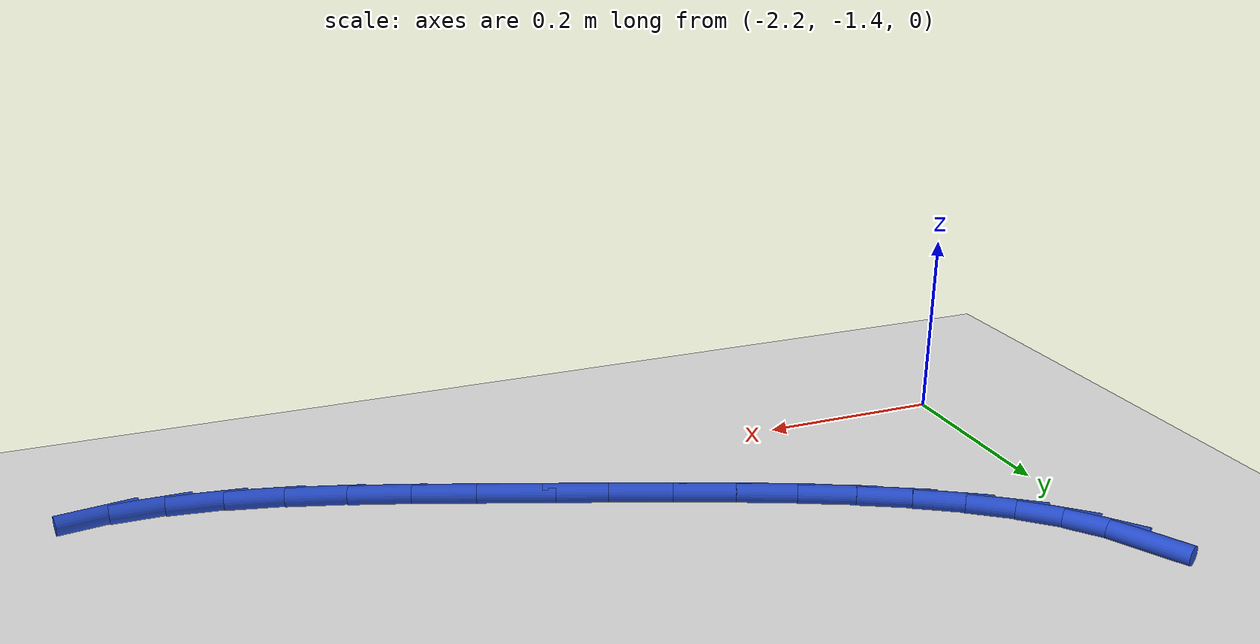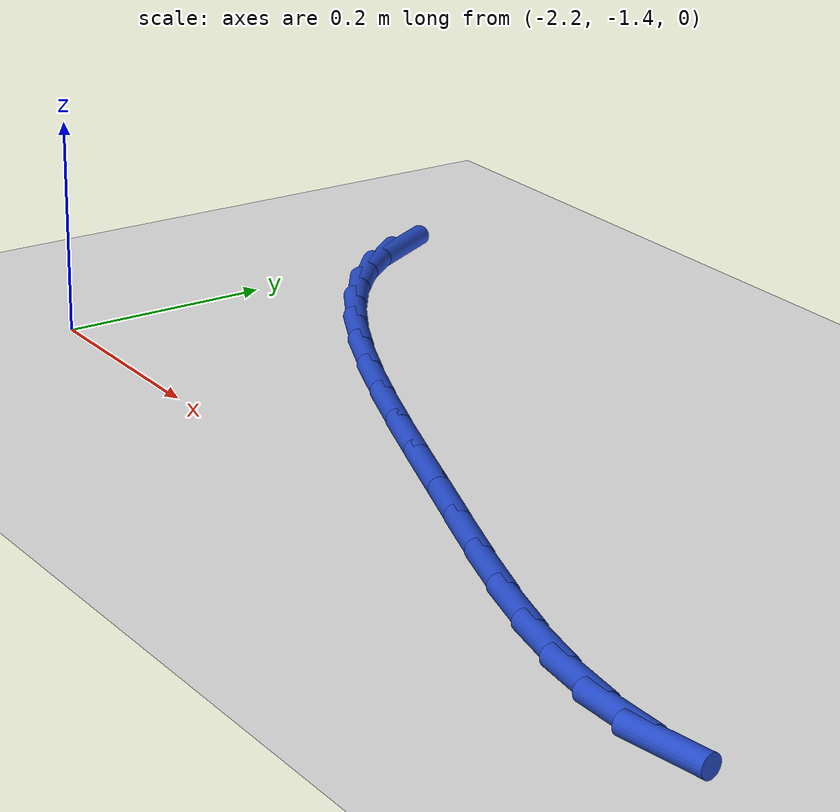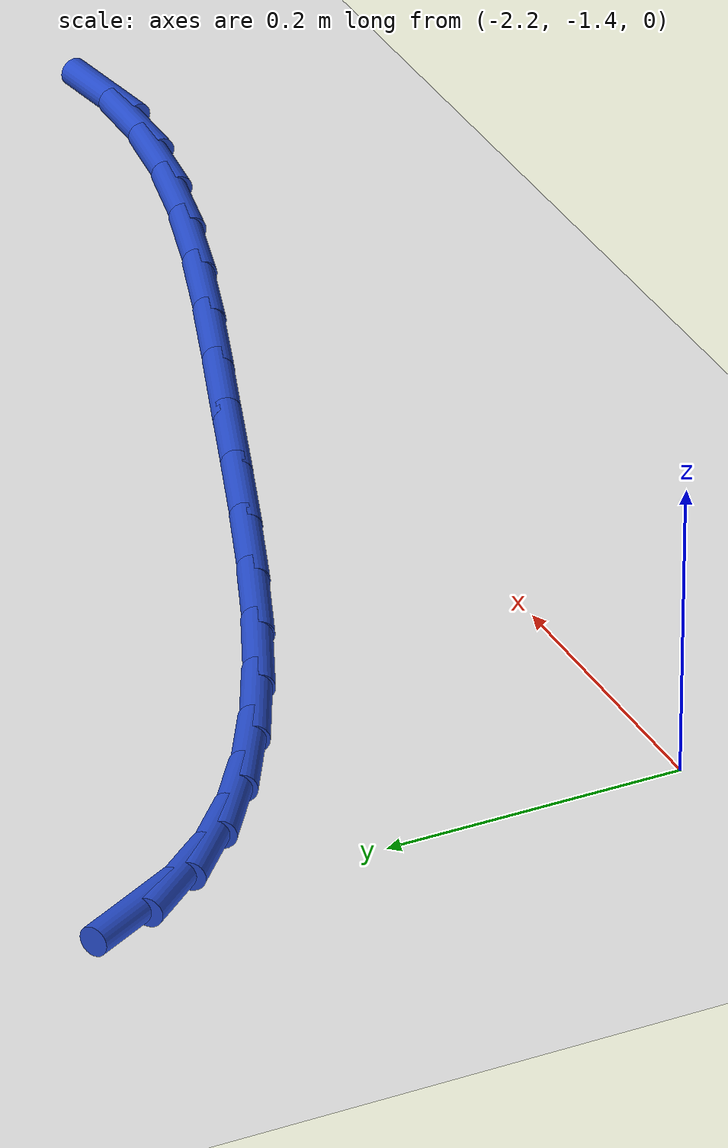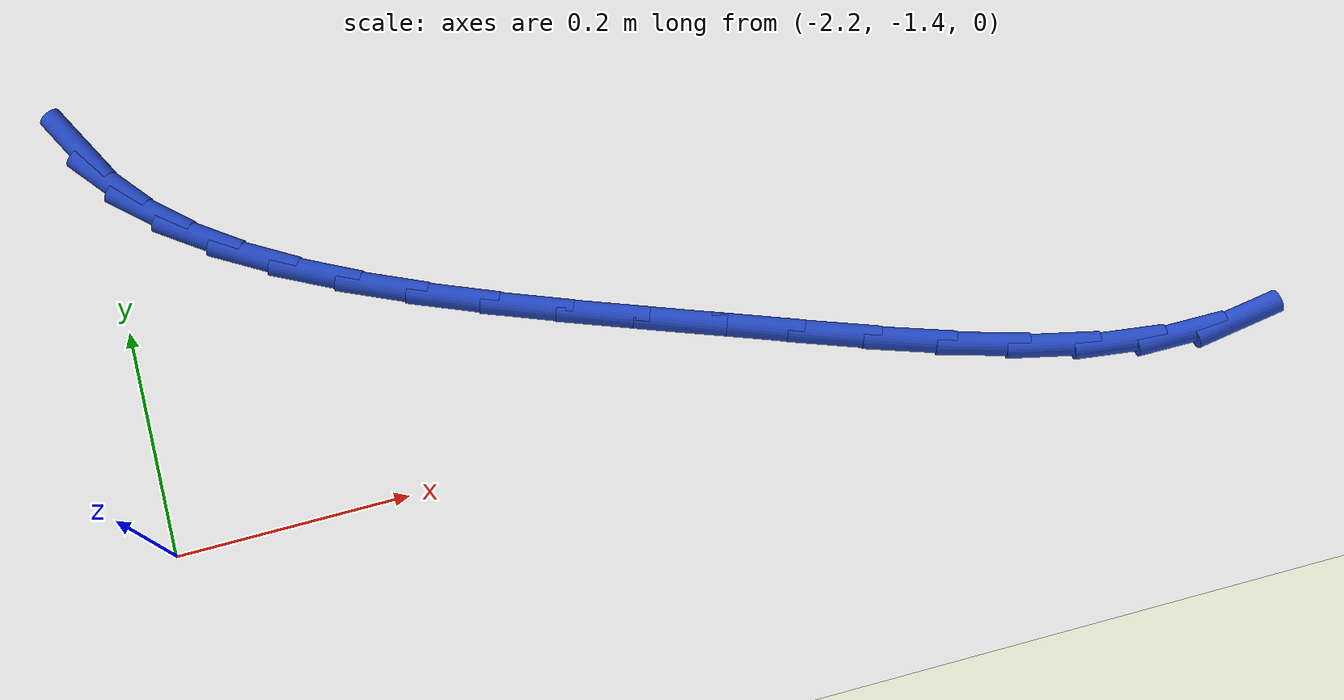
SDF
<sdf version="1.6">
 <world name="default">
  <model name="ground_plane">
   <static>1</static>
   <link name="link">
    <collision name="collision">
     <geometry><plane><normal>0 0 1</normal><size>100 100</size></plane></geometry>
     <surface><friction><ode><mu>100</mu><mu2>50</mu2></ode></friction></surface>
    </collision>
    <visual name="visual">
     <cast_shadows>0</cast_shadows>
     <geometry><plane><normal>0 0 1</normal><size>100 100</size></plane></geometry>
     <material>
      <script><uri>file://media/materials/scripts/gazebo.material</uri><name>Gazebo/WhiteGlow</name></script>
     </material>
    </visual>
   </link>
  </model>
  <model name="line">
   <link name="link_95">
    <pose>-2.2084590115868927 -1.0273541555095298 0.01 0 1.57 -1.077240435457172</pose>
    <collision name="collision">
     <geometry><cylinder><radius>0.01</radius><length>0.08</length></cylinder></geometry>
    </collision>
    <visual name="visual">
     <material>
      <script><name>Gazebo/Blue</name><uri>file://media/materials/scripts/gazebo.material</uri></script>
     </material>
     <geometry><cylinder><radius>0.01</radius><length>0.08</length></cylinder></geometry>
    </visual>
   </link>
   <link name="link_96">
    <pose>-2.1879652012934843 -1.0654492606058812 0.01 0 1.57 -0.885836597349802</pose>
    <collision name="collision">
     <geometry><cylinder><radius>0.01</radius><length>0.08</length></cylinder></geometry>
    </collision>
    <visual name="visual">
     <material>
      <script><name>Gazebo/Blue</name><uri>file://media/materials/scripts/gazebo.material</uri></script>
     </material>
     <geometry><cylinder><radius>0.01</radius><length>0.08</length></cylinder></geometry>
    </visual>
   </link>
   <link name="link_97">
    <pose>-2.159197227275898 -1.1006653956921653 0.01 0 1.57 -0.734535718442552</pose>
    <collision name="collision">
     <geometry><cylinder><radius>0.01</radius><length>0.08</length></cylinder></geometry>
    </collision>
    <visual name="visual">
     <material>
      <script><name>Gazebo/Blue</name><uri>file://media/materials/scripts/gazebo.material</uri></script>
     </material>
     <geometry><cylinder><radius>0.01</radius><length>0.08</length></cylinder></geometry>
    </visual>
   </link>
   <link name="link_98">
    <pose>-2.1230610339058495 -1.1333006839110742 0.01 0 1.57 -0.6190840506933724</pose>
    <collision name="collision">
     <geometry><cylinder><radius>0.01</radius><length>0.08</length></cylinder></geometry>
    </collision>
    <visual name="visual">
     <material>
      <script><name>Gazebo/Blue</name><uri>file://media/materials/scripts/gazebo.material</uri></script>
     </material>
     <geometry><cylinder><radius>0.01</radius><length>0.08</length></cylinder></geometry>
    </visual>
   </link>
   <link name="link_99">
    <pose>-2.0804625655550515 -1.1636532484053017 0.01 0 1.57 -0.5323658069044648</pose>
    <collision name="collision">
     <geometry><cylinder><radius>0.01</radius><length>0.08</length></cylinder></geometry>
    </collision>
    <visual name="visual">
     <material>
      <script><name>Gazebo/Blue</name><uri>file://media/materials/scripts/gazebo.material</uri></script>
     </material>
     <geometry><cylinder><radius>0.01</radius><length>0.08</length></cylinder></geometry>
    </visual>
   </link>
   <link name="link_100">
    <pose>-2.032307766595222 -1.1920212123175404 0.01 0 1.57 -0.4678639262905803</pose>
    <collision name="collision">
     <geometry><cylinder><radius>0.01</radius><length>0.08</length></cylinder></geometry>
    </collision>
    <visual name="visual">
     <material>
      <script><name>Gazebo/Blue</name><uri>file://media/materials/scripts/gazebo.material</uri></script>
     </material>
     <geometry><cylinder><radius>0.01</radius><length>0.08</length></cylinder></geometry>
    </visual>
   </link>
   <link name="link_101">
    <pose>-1.9795025813980731 -1.2187026987904825 0.01 0 1.57 -0.4205839975415106</pose>
    <collision name="collision">
     <geometry><cylinder><radius>0.01</radius><length>0.08</length></cylinder></geometry>
    </collision>
    <visual name="visual">
     <material>
      <script><name>Gazebo/Blue</name><uri>file://media/materials/scripts/gazebo.material</uri></script>
     </material>
     <geometry><cylinder><radius>0.01</radius><length>0.08</length></cylinder></geometry>
    </visual>
   </link>
   <link name="link_102">
    <pose>-1.92295295433532 -1.2439958309668222 0.01 0 1.57 -0.3869874769553237</pose>
    <collision name="collision">
     <geometry><cylinder><radius>0.01</radius><length>0.08</length></cylinder></geometry>
    </collision>
    <visual name="visual">
     <material>
      <script><name>Gazebo/Blue</name><uri>file://media/materials/scripts/gazebo.material</uri></script>
     </material>
     <geometry><cylinder><radius>0.01</radius><length>0.08</length></cylinder></geometry>
    </visual>
   </link>
   <link name="link_103">
    <pose>-1.8635648297786778 -1.268198731989252 0.01 0 1.57 -0.36469842553913157</pose>
    <collision name="collision">
     <geometry><cylinder><radius>0.01</radius><length>0.08</length></cylinder></geometry>
    </collision>
    <visual name="visual">
     <material>
      <script><name>Gazebo/Blue</name><uri>file://media/materials/scripts/gazebo.material</uri></script>
     </material>
     <geometry><cylinder><radius>0.01</radius><length>0.08</length></cylinder></geometry>
    </visual>
   </link>
   <link name="link_104">
    <pose>-1.8022441520998618 -1.2916095250004642 0.01 0 1.57 -0.3522382406193679</pose>
    <collision name="collision">
     <geometry><cylinder><radius>0.01</radius><length>0.08</length></cylinder></geometry>
    </collision>
    <visual name="visual">
     <material>
      <script><name>Gazebo/Blue</name><uri>file://media/materials/scripts/gazebo.material</uri></script>
     </material>
     <geometry><cylinder><radius>0.01</radius><length>0.08</length></cylinder></geometry>
    </visual>
   </link>
   <link name="link_105">
    <pose>-1.739896865670585 -1.314526333143153 0.01 0 1.57 -0.34884633134695864</pose>
    <collision name="collision">
     <geometry><cylinder><radius>0.01</radius><length>0.08</length></cylinder></geometry>
    </collision>
    <visual name="visual">
     <material>
      <script><name>Gazebo/Blue</name><uri>file://media/materials/scripts/gazebo.material</uri></script>
     </material>
     <geometry><cylinder><radius>0.01</radius><length>0.08</length></cylinder></geometry>
    </visual>
   </link>
   <link name="link_106">
    <pose>-1.6774289148625647 -1.33724727956001 0.01 0 1.57 -0.35097317335885747</pose>
    <collision name="collision">
     <geometry><cylinder><radius>0.01</radius><length>0.08</length></cylinder></geometry>
    </collision>
    <visual name="visual">
     <material>
      <script><name>Gazebo/Blue</name><uri>file://media/materials/scripts/gazebo.material</uri></script>
     </material>
     <geometry><cylinder><radius>0.01</radius><length>0.08</length></cylinder></geometry>
    </visual>
   </link>
   <link name="link_107">
    <pose>-1.615658035564595 -1.3598635585667331 0.01 0 1.57 -0.34304940948020946</pose>
    <collision name="collision">
     <geometry><cylinder><radius>0.01</radius><length>0.08</length></cylinder></geometry>
    </collision>
    <visual name="visual">
     <material>
      <script><name>Gazebo/Blue</name><uri>file://media/materials/scripts/gazebo.material</uri></script>
     </material>
     <geometry><cylinder><radius>0.01</radius><length>0.08</length></cylinder></geometry>
    </visual>
   </link>
   <link name="link_108">
    <pose>-1.5550020307392016 -1.3815281593475583 0.01 0 1.57 -0.3195399583710147</pose>
    <collision name="collision">
     <geometry><cylinder><radius>0.01</radius><length>0.08</length></cylinder></geometry>
    </collision>
    <visual name="visual">
     <material>
      <script><name>Gazebo/Blue</name><uri>file://media/materials/scripts/gazebo.material</uri></script>
     </material>
     <geometry><cylinder><radius>0.01</radius><length>0.08</length></cylinder></geometry>
    </visual>
   </link>
   <link name="link_109">
    <pose>-1.4957654148308392 -1.401128306849761 0.01 0 1.57 -0.2781500958049246</pose>
    <collision name="collision">
     <geometry><cylinder><radius>0.01</radius><length>0.08</length></cylinder></geometry>
    </collision>
    <visual name="visual">
     <material>
      <script><name>Gazebo/Blue</name><uri>file://media/materials/scripts/gazebo.material</uri></script>
     </material>
     <geometry><cylinder><radius>0.01</radius><length>0.08</length></cylinder></geometry>
    </visual>
   </link>
   <link name="link_110">
    <pose>-1.4382526950026624 -1.4175512089393725 0.01 0 1.57 -0.2152832272094509</pose>
    <collision name="collision">
     <geometry><cylinder><radius>0.01</radius><length>0.08</length></cylinder></geometry>
    </collision>
    <visual name="visual">
     <material>
      <script><name>Gazebo/Blue</name><uri>file://media/materials/scripts/gazebo.material</uri></script>
     </material>
     <geometry><cylinder><radius>0.01</radius><length>0.08</length></cylinder></geometry>
    </visual>
   </link>
   <link name="link_111">
    <pose>-1.382768378417827 -1.4296840734824212 0.01 0 1.57 -0.12594982273943406</pose>
    <collision name="collision">
     <geometry><cylinder><radius>0.01</radius><length>0.08</length></cylinder></geometry>
    </collision>
    <visual name="visual">
     <material>
      <script><name>Gazebo/Blue</name><uri>file://media/materials/scripts/gazebo.material</uri></script>
     </material>
     <geometry><cylinder><radius>0.01</radius><length>0.08</length></cylinder></geometry>
    </visual>
   </link>
   <link name="link_112">
    <pose>-1.32961697223949 -1.4364141083449393 0.01 0 1.57 -0.004244601668821671</pose>
    <collision name="collision">
     <geometry><cylinder><radius>0.01</radius><length>0.08</length></cylinder></geometry>
    </collision>
    <visual name="visual">
     <material>
      <script><name>Gazebo/Blue</name><uri>file://media/materials/scripts/gazebo.material</uri></script>
     </material>
     <geometry><cylinder><radius>0.01</radius><length>0.08</length></cylinder></geometry>
    </visual>
   </link>
   <link name="link_113">
    <pose>-1.2791029836308045 -1.436628521392956 0.01 0 1.57 0.15460409094408198</pose>
    <collision name="collision">
     <geometry><cylinder><radius>0.01</radius><length>0.08</length></cylinder></geometry>
    </collision>
    <visual name="visual">
     <material>
      <script><name>Gazebo/Blue</name><uri>file://media/materials/scripts/gazebo.material</uri></script>
     </material>
     <geometry><cylinder><radius>0.01</radius><length>0.08</length></cylinder></geometry>
    </visual>
   </link>
  </model>
 </world>
</sdf>
